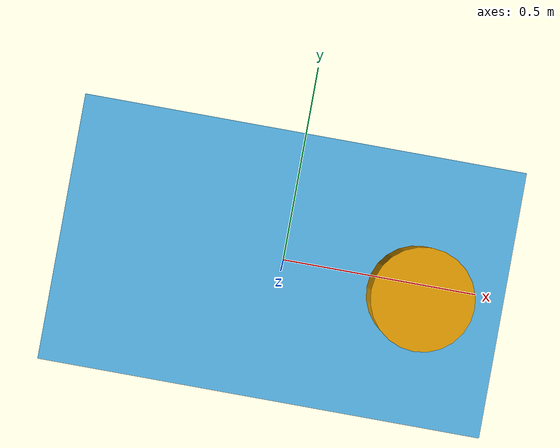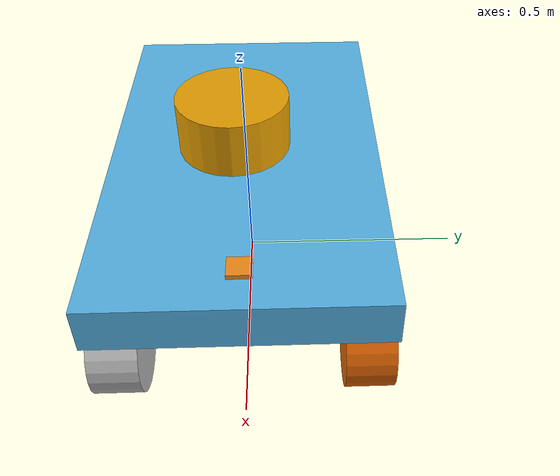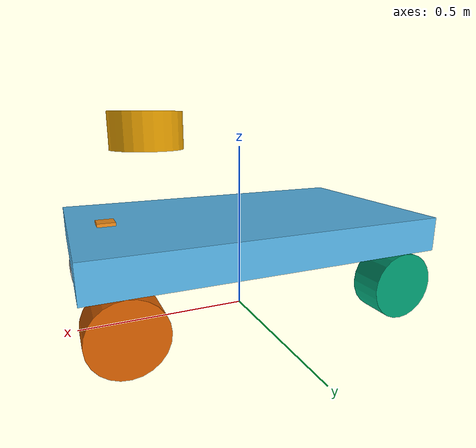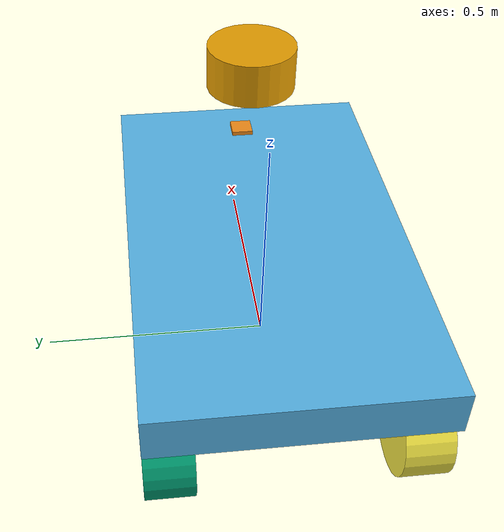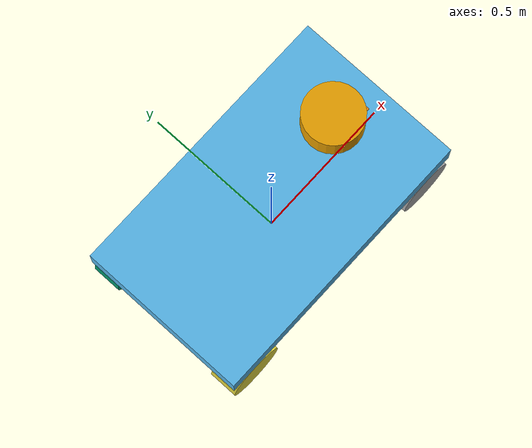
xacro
<?xml version="1.0"?>
<robot xmlns:xacro="http://www.ros.org/wiki/xacro" name="racecar">
    <link name="base_link"/>
    <xacro:include filename="$(find my_gazebo_sim)/xacro/inertia.xacro"/>
    <xacro:property name="chasis_l" value="1.0"/>
    <xacro:property name="chasis_w" value="0.6"/>
    <xacro:property name="chasis_h" value="0.1"/>
    <xacro:property name="chasis_m" value="20.0"/>
    <xacro:property name="wheel_r" value="0.1"/>
    <xacro:property name="wheel_l" value="0.1"/>
    <xacro:property name="wheel_m" value="5.0"/>
    <xacro:property name="lidar_r" value="0.1"/>
    <xacro:property name="lidar_l" value="0.1"/>
    <xacro:property name="lidar_m" value="1.0"/>
    <xacro:property name="imu_l" value="0.05"/>
    <xacro:property name="imu_w" value="0.05"/>
    <xacro:property name="imu_h" value="0.01"/>
    <xacro:property name="imu_m" value="0.5"/>

    <xacro:include filename="$(find my_gazebo_sim)/xacro/ackermann/chasis.xacro"/>
    <xacro:include filename="$(find my_gazebo_sim)/xacro/ackermann/rear_wheels.xacro"/>
    <xacro:include filename="$(find my_gazebo_sim)/xacro/ackermann/front_wheels.xacro"/>
    <xacro:include filename="$(find my_gazebo_sim)/xacro/ackermann/lidar.xacro"/>
    <xacro:include filename="$(find my_gazebo_sim)/xacro/ackermann/imu.xacro"/>
    <gazebo>
        <plugin name="gazebo_ros_control" filename="libgazebo_ros_control.so">
            <robotNamespace>/racecar</robotNamespace>
            <robotParam>/robot_description</robotParam>
            <legacyModeNS>true</legacyModeNS>
            <robotSimType>gazebo_ros_control/DefaultRobotHWSim</robotSimType>
        </plugin>
    </gazebo>
</robot>

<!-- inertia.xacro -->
<robot xmlns:xacro="http://www.ros.org/wiki/xacro" name="tracer">
    <!-- Macro for inertia matrix -->
    <xacro:macro name="sphere_inertial_matrix" params="m r">
        <inertial>
            <mass value="${m}" />
            <inertia ixx="${2*m*r*r/5}" ixy="0" ixz="0"
                iyy="${2*m*r*r/5}" iyz="0"
                izz="${2*m*r*r/5}" />
        </inertial>
    </xacro:macro>
    <xacro:macro name="cylinder_inertial_matrix" params="m r h">
            <inertial>
                <mass value="${m}" />
                <inertia ixx="${m*(3*r*r+h*h)/12}" ixy = "0" ixz = "0"
                    iyy="${m*(3*r*r+h*h)/12}" iyz = "0"
                    izz="${m*r*r/2}" />
            </inertial>
        </xacro:macro>
    <xacro:macro name="box_inertial_matrix" params="m l w h">
        <inertial>
                <mass value="${m}" />
                <inertia ixx="${m*(h*h + l*l)/12}" ixy = "0" ixz = "0"
                    iyy="${m*(w*w + l*l)/12}" iyz= "0"
                    izz="${m*(w*w + h*h)/12}" />
        </inertial>
    </xacro:macro>

</robot>

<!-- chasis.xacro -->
<robot xmlns:xacro="http://www.ros.org/wiki/xacro" name="racecar">
    <link name="chasis">
        <visual >
            <geometry>
                <box size="${chasis_l} ${chasis_w} ${chasis_h}"/>
            </geometry>
        </visual>
        <xacro:box_inertial_matrix m="${chasis_m}" l="${chasis_l}" w="${chasis_w}" h="${chasis_h}" />
    </link>
    <joint name="chasis2base" type="fixed">
        <parent link="base_link"/>
        <child link="chasis"/>
        <origin xyz="0.0 0.0 ${wheel_r*2+chasis_h/2}" rpy="0.0 0.0 0.0"/>
    </joint>
</robot>

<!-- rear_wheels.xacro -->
<robot xmlns:xacro="http://www.ros.org/wiki/xacro" name="racecar">
    <xacro:macro name="rear_wheels_func" params="name flag">
        <link name="rear_${name}_wheel">
            <visual>
                <geometry>
                    <cylinder radius="${wheel_r}" length="${wheel_l}"/>
                </geometry>
                <origin xyz="0.0 0.0 0.0" rpy="${pi/2} 0 0"/>
            </visual>

            <collision>
                <geometry>
                    <cylinder radius="${wheel_r}" length="${wheel_l}"/>
                </geometry>
                <origin xyz="0.0 0.0 0.0" rpy="${pi/2} 0 0"/>
            </collision>
            <xacro:cylinder_inertial_matrix m="${wheel_m}" r="${wheel_r}" h="${wheel_l}"/>
        </link>
        <joint name="rear_${name}2chasis" type="continuous">
            <parent link="chasis"/>
            <child link="rear_${name}_wheel"/>
            <axis xyz="0 1 0"/>
            <origin xyz="${-(chasis_l/2-wheel_r)} ${flag*(chasis_w/2-wheel_l/2)} ${-(wheel_r+chasis_h/2)}"/>
        </joint>
        <transmission name="rear_${name}2chasis_trans">
            <type>transmission_interface/SimpleTransmission</type>
            <joint name="rear_${name}2chasis">
                <hardwareInterface>hardware_interface/VelocityJointInterface</hardwareInterface>
            </joint>
            <actuator name="rear_${name}2chasis_motor">
                <mechanicalReduction>1.0</mechanicalReduction>
                <hardwareInterface>hardware_interface/VelocityJointInterface</hardwareInterface>
            </actuator>
        </transmission>
        <gazebo reference="rear_${name}_wheel">
            <mu1 value="10.0"/>
            <mu2 value="10.0"/>
            <kp value="1000000.0" />
            <kd value="10.0" />
        </gazebo>
    </xacro:macro>
    <xacro:rear_wheels_func name="left" flag="1"/>
    <xacro:rear_wheels_func name="right" flag="-1"/>
</robot>

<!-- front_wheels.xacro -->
<robot xmlns:xacro="http://www.ros.org/wiki/xacro" name="racecar">
    <xacro:macro name="front_wheels_func" params="name flag">
        <link name="${name}_steering">
            <visual>
                <geometry>
                    <cylinder radius="0.01" length="0.1"/>
                </geometry>
            </visual>
            <collision>
                <geometry>
                    <cylinder radius="0.01" length="0.1"/>
                </geometry>
            </collision>
            <inertial>
                <origin xyz="0 0 0" />
                <mass value="0.5" />
                <inertia ixx="1.35E-05" ixy="0" ixz="0" iyy="1.35E-05" iyz="0" izz="2.5E-05" />
            </inertial>
        </link>
        <joint name="${name}_steering2chasis" type="revolute">
            <parent link="chasis"/>
            <child link="${name}_steering"/>
            <axis xyz="0 0 -1"/>
            <limit lower="${-pi/4}" upper="${pi/4}" velocity="4.553" effort="0.5649"/>
            <origin xyz="${chasis_l/2-wheel_r} ${flag*(chasis_w/2-wheel_l/2)} ${-(wheel_r+chasis_h/2)}" rpy="0 0 0"/>
        </joint>
        <transmission name="${name}_steering2chasis_trans">
            <type>transmission_interface/SimpleTransmission</type>
            <joint name="${name}_steering2chasis">
                <hardwareInterface>hardware_interface/PositionJointInterface</hardwareInterface>
            </joint>
            <actuator name="${name}_steering2chasis_motor">
                <mechanicalReduction>1.0</mechanicalReduction>
                <hardwareInterface>hardware_interface/PositionJointInterface</hardwareInterface>
            </actuator>
        </transmission>
        <link name="front_${name}_wheel">
            <visual>
                <origin xyz="0 0 0" rpy="${pi/2} 0 0"/>
                <geometry>
                    <cylinder radius="${wheel_r}" length="${wheel_l}"/>
                </geometry>
            </visual>
            <collision>
                <origin xyz="0 0 0" rpy="${pi/2} 0 0"/>
                <geometry>
                    <cylinder radius="${wheel_r}" length="${wheel_l}"/>
                </geometry>
            </collision>
            <xacro:cylinder_inertial_matrix m="${wheel_m}" r="${wheel_r}" h="${wheel_l}"/>
        </link>
        <joint name="${name}2steering" type="continuous">
            <parent link="${name}_steering"/>
            <child link="front_${name}_wheel"/>
            <axis xyz="0 1 0"/>
            <origin xyz="0.0 0.0 0.0" rpy="0.0 0.0 0.0"/>
        </joint>
        <transmission name="${name}2steering_trans">
            <type>transmission_interface/SimpleTransmission</type>
            <joint name="${name}2steering">
                <hardwareInterface>hardware_interface/EffortJointInterface</hardwareInterface>
            </joint>
            <actuator name="${name}2steering_motor">
                <mechanicalReduction>1.0</mechanicalReduction>
                <hardwareInterface>hardware_interface/EffortJointInterface</hardwareInterface>
            </actuator>
        </transmission>
        <gazebo reference="front_${name}_wheel">
            <mu1 value="100.0"/>
            <mu2 value="50.0"/>
            <kp value="1000000.0" />
            <kd value="10.0" />
        </gazebo>
    </xacro:macro>
    <xacro:front_wheels_func name="left" flag="1"/>
    <xacro:front_wheels_func name="right" flag="-1"/>
</robot>

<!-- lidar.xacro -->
<robot xmlns:xacro="http://www.ros.org/wiki/xacro" name="racercar">
    <link name="lidar">
        <visual>
            <geometry>
                <cylinder radius="${lidar_r}" length="${lidar_l}"/>
            </geometry>
        </visual>
        <xacro:cylinder_inertial_matrix m="${lidar_m}" r="${lidar_r}" h="${lidar_l}"/>
    </link>
    <joint name="lidar2chasis" type="fixed">
        <parent link="chasis"/>
        <child link="lidar"/>
        <origin xyz="${chasis_l/2-wheel_r-imu_l/2-lidar_r} 0.0 ${chasis_h*2+lidar_l}" rpy="0.0 0.0 0.0"/>
    </joint>
    <gazebo reference="lidar">
        <sensor type="ray" name="rplidar">
            <pose>0 0 ${lidar_l} 0 0 0</pose>
            <visualize>true</visualize>
            <update_rate>20.0</update_rate>
            <ray>
                <scan>
                    <horizontal>
                        <samples>720</samples>
                        <resolution>1</resolution>
                        <min_angle>-3</min_angle>
                        <max_angle>3</max_angle>
                    </horizontal>
                </scan>
                <range>
                    <min>0.10</min>
                    <max>30.0</max>
                    <resolution>0.01</resolution>
                </range>
                <noise>
                    <type>gaussian</type>
                    <mean>0.0</mean>
                    <stddev>0.01</stddev>
                </noise>
            </ray>
            <plugin name="gazebo_rplidar" filename="libgazebo_ros_laser.so">
                <topicName>/scan</topicName>
                <frameName>lidar</frameName>
            </plugin>
        </sensor>
    </gazebo>
</robot>

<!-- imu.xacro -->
<robot xmlns:xacro="http://www.ros.org/wiki/xacro" name="racecar">
    <link name="imu">
        <visual>
            <geometry>
                <box size="${imu_l} ${imu_w} ${imu_h}"/>
            </geometry>
        </visual>
        <collision>
            <geometry>
                <box size="${imu_l} ${imu_w} ${imu_h}"/>
            </geometry>
        </collision>
        <xacro:box_inertial_matrix m="${imu_m}" l="${imu_l}" w="${imu_w}" h="${imu_h}"/>
    </link>
    <joint name="imu2chasis" type="fixed">
        <parent link="chasis"/>
        <child link="imu"/>
        <origin xyz="${chasis_l/2-wheel_r} 0.0 ${chasis_h/2+imu_h/2}" rpy="0.0 0.0 0.0"/>
    </joint>
    <gazebo reference="imu">
        <material>Gazebo/Orange</material>
        <gravity>true</gravity>
        <sensor name="imu_sensor" type="imu">
            <always_on>true</always_on>
            <update_rate>100</update_rate>
            <visualize>true</visualize>
            <topic>__default_topic__</topic>
            <plugin filename="libgazebo_ros_imu_sensor.so" name="imu_plugin">
                <topicName>imu</topicName>
                <bodyName>imu</bodyName>
                <updateRateHZ>100.0</updateRateHZ>
                <gaussianNoise>0.0</gaussianNoise>
                <xyzOffset>0 0 0</xyzOffset>
                <rpyOffset>0 0 0</rpyOffset>
                <frameName>imu</frameName>
            </plugin>
            <pose>0 0 0 0 0 0</pose>
        </sensor>
</gazebo>
</robot>
